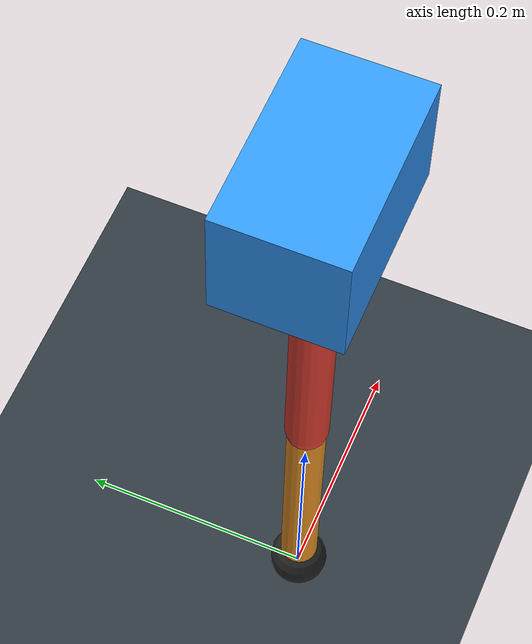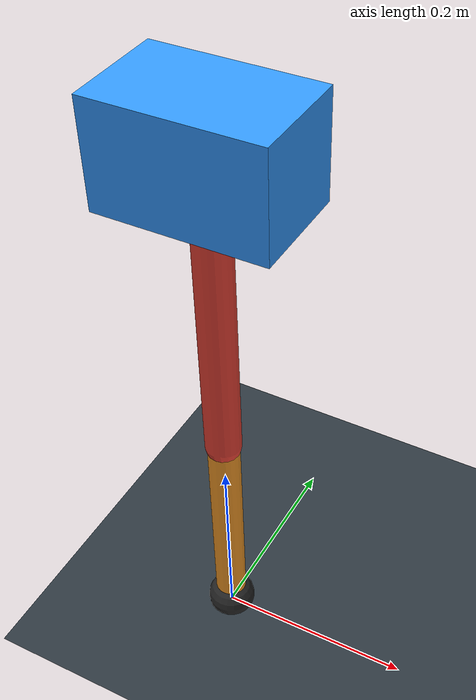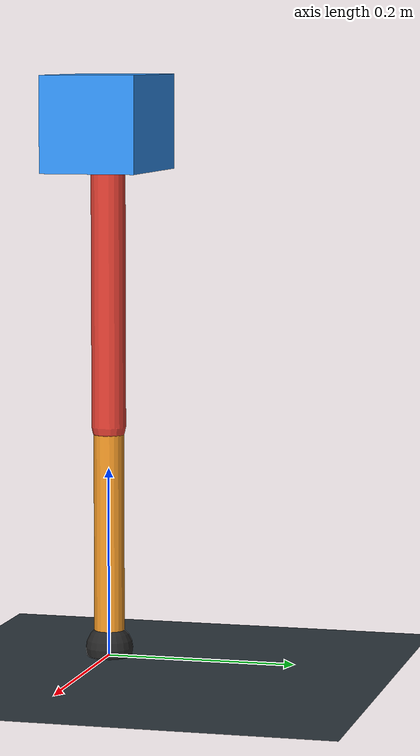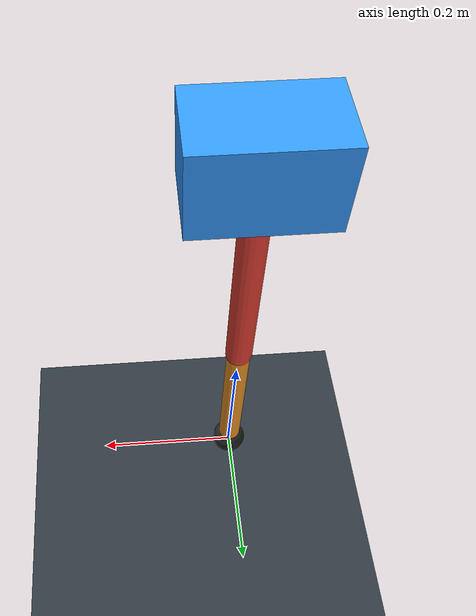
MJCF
<mujoco model="single_axis_two_bar">
  <compiler angle="radian" inertiafromgeom="true"/>
  <option timestep="0.001" integrator="implicitfast" gravity="0 0 -9.81"/>
  <default>
    <joint damping="0.08"/>
    <geom friction="1.2 0.01 0.0001" condim="3"/>
  </default>
  <worldbody>
    <geom name="floor" type="plane" size="5 5 0.1" rgba="0.18 0.22 0.25 1"/>
    <body name="carriage" pos="0 0 0.562417098570329">
      <joint name="pole_slide" type="slide" axis="0 0 1"/>
      <geom name="payload" type="box" size="0.08 0.05 0.05" mass="3.7061032595338537" rgba="0.2 0.6 1 1"/>
      <body name="thigh" pos="0 0 0">
        <joint name="hip" type="hinge" axis="0 1 0"/>
        <geom name="thigh_link" type="capsule" fromto="0 0 0 0 0 -0.31885565904755364" size="0.018" mass="0.2271888703771832" rgba="0.9 0.25 0.2 1"/>
        <body name="shank" pos="0 0 -0.31885565904755364">
          <joint name="knee" type="hinge" axis="0 1 0"/>
          <geom name="shank_link" type="capsule" fromto="0 0 0 0 0 -0.2351825869012391" size="0.016" mass="0.16757070083083467" rgba="0.95 0.6 0.15 1"/>
          <geom name="foot" type="sphere" pos="0 0 -0.2351825869012391" size="0.025" mass="0.03" rgba="0.15 0.15 0.15 1"/>
          <site name="toe" pos="0 0 -0.2351825869012391" size="0.008"/>
        </body>
      </body>
    </body>
  </worldbody>
  <actuator>
    <motor name="hip_motor" joint="hip" ctrlrange="-38.99918071393462 38.99918071393462"/>
    <motor name="knee_motor" joint="knee" ctrlrange="-140.58458534529206 140.58458534529206"/>
  </actuator>
</mujoco>
